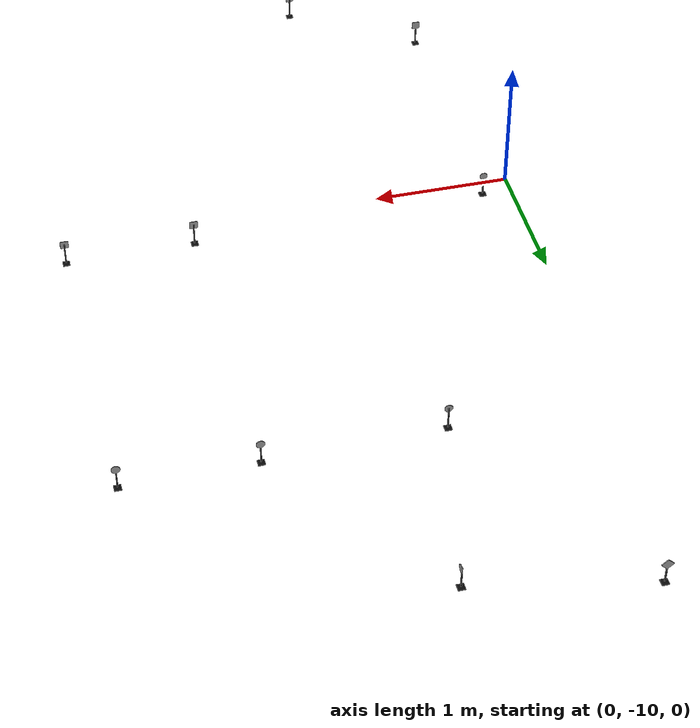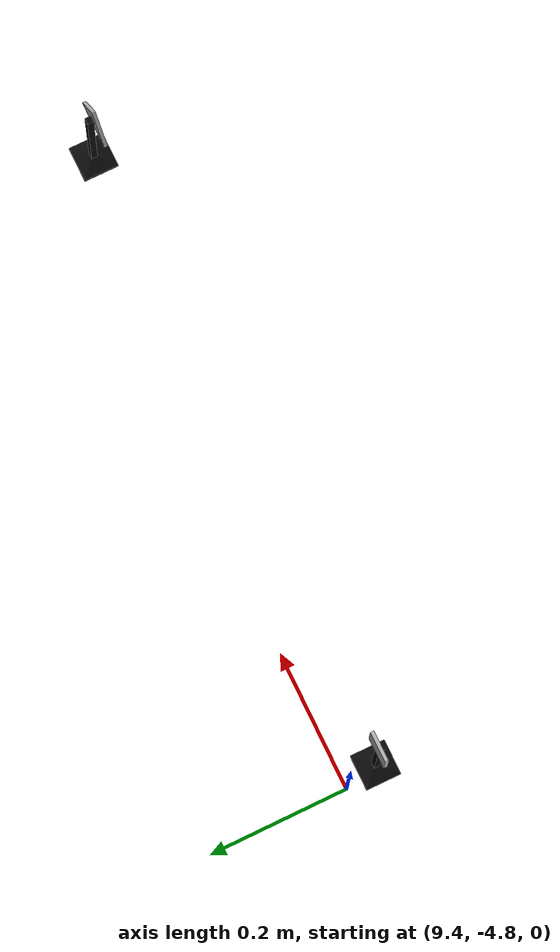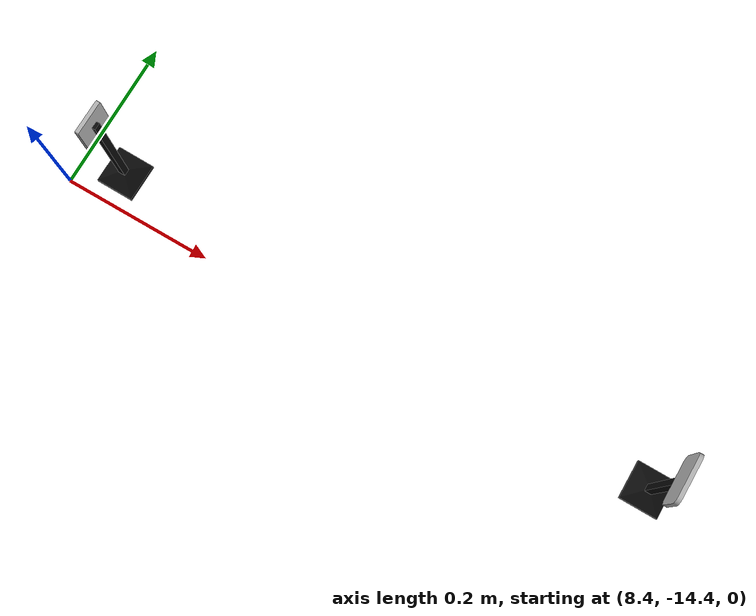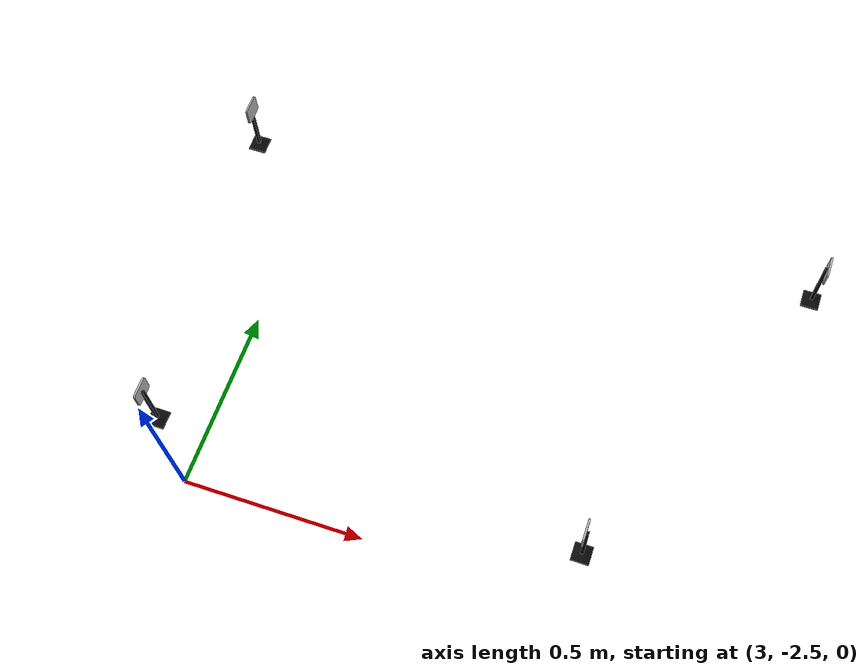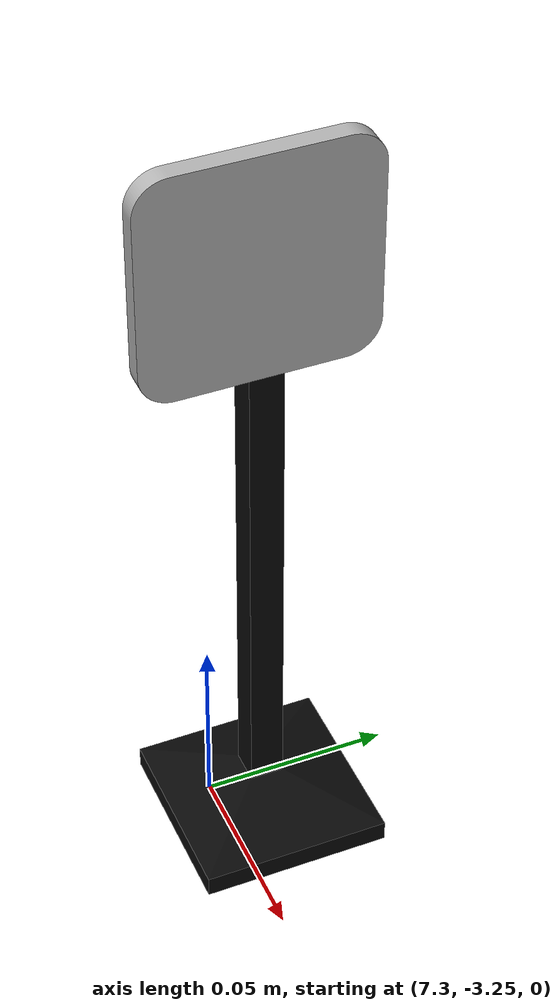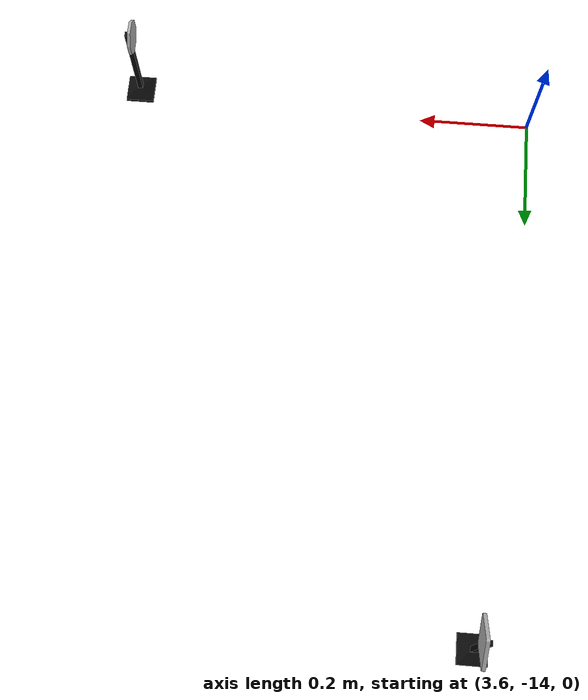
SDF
<sdf version="1.6">
 <world name="bfmc_official">
  <gravity>0 0 -9.8</gravity>
  <light name="c1" type="point">
   <pose>0 0 2 0 0 0</pose>
   <diffuse>125 125 125 125</diffuse>
   <specular>50 50 50 50</specular>
   <attenuation><range>20</range><constant>0.3</constant></attenuation>
   <cast_shadows>0</cast_shadows>
  </light>
  <light name="c2" type="point">
   <pose>15 0 2 0 0 0</pose>
   <diffuse>125 125 125 125</diffuse>
   <specular>50 50 50 50</specular>
   <attenuation><range>20</range><constant>0.3</constant></attenuation>
   <cast_shadows>0</cast_shadows>
  </light>
  <light name="c3" type="point">
   <pose>0 -15 2 0 0 0</pose>
   <diffuse>125 125 125 125</diffuse>
   <specular>50 50 50 50</specular>
   <attenuation><range>20</range><constant>0.3</constant></attenuation>
   <cast_shadows>0</cast_shadows>
  </light>
  <light name="c4" type="point">
   <pose>15 -15 2 0 0 0</pose>
   <diffuse>125 125 125 125</diffuse>
   <specular>50 50 50 50</specular>
   <attenuation><range>50</range><constant>0.3</constant></attenuation>
   <cast_shadows>0</cast_shadows>
  </light>
  <include>
   <uri>model://enter_highway_sign</uri>
   <name>EHIGH_T</name>
   <pose>5.871 -13.970 0.079 0 0 3.141592</pose>
  </include>
  <include>
   <uri>model://enter_highway_sign</uri>
   <name>EHIGH_Y</name>
   <pose>9.412 -4.850 0.079 0 0 1.570796</pose>
  </include>
  <include>
   <uri>model://leave_highway_sign</uri>
   <name>LHIGH_U</name>
   <pose>10.686 -6.276 0.079 0 0 4.712388</pose>
  </include>
  <include>
   <uri>model://leave_highway_sign</uri>
   <name>LHIGH_Z</name>
   <pose>6.520 -12.700 0.079 0 0 0</pose>
  </include>
  <include>
   <uri>model://leave_highway_sign</uri>
   <name>LHIGH_H</name>
   <pose>8.458 -14.359 0.079 0 0 -3.15</pose>
  </include>
  <include>
   <uri>model://prohibited_sign</uri>
   <name>DENY_V</name>
   <pose>3.323 -7.581 0.079 0 0 4.712388</pose>
  </include>
  <include>
   <uri>model://prohibited_sign</uri>
   <name>DENY_X</name>
   <pose>2.387 -7.581 0.079 0 0 4.712388</pose>
  </include>
  <include>
   <uri>model://prohibited_sign</uri>
   <name>DENY_G</name>
   <pose>11.578 -4.504 0.079 0 0 4.712388</pose>
  </include>
  <include>
   <uri>model://oneway_sign</uri>
   <name>ONEWAY_J</name>
   <pose>3.341 -9.821 0.079 0 0 1.570796</pose>
  </include>
  <include>
   <uri>model://oneway_sign</uri>
   <name>ONEWAY_B</name>
   <pose>2.406 -9.821 0.079 0 0 1.570796</pose>
  </include>
  <include><uri>model://oneway_sign</uri><name>ONEWAY_E</name><pose>9.196 -14.375 0.079 0 0 0</pose></include>
  <include><uri>model://parking_sign</uri><name>PRK_P1</name><pose>4.047 -2.358 0.079 0 0 0</pose></include>
  <include><uri>model://parking_sign</uri><name>PRK_P2</name><pose>2.857 -2.358 0.079 0 0 0</pose></include>
  <include>
   <uri>model://parking_sign</uri>
   <name>PRK_P3</name>
   <pose>2.779 -1.452 0.079 0 0 3.141592</pose>
  </include>
  <include>
   <uri>model://parking_sign</uri>
   <name>PRK_P4</name>
   <pose>4.459 -1.452 0.079 0 0 3.141592</pose>
  </include>
  <include>
   <uri>model://crosswalk_sign</uri>
   <name>CWALK_K</name>
   <pose>7.312 -3.240 0.079 0 0 3.141592</pose>
  </include>
  <include><uri>model://crosswalk_sign</uri><name>CWALK_L</name><pose>6.627 -4.181 0.079 0 0 0</pose></include>
  <include>
   <uri>model://crosswalk_sign</uri>
   <name>CWALK_M</name>
   <pose>6.777 -1.456 0.079 0 0 3.141592</pose>
  </include>
  <include><uri>model://crosswalk_sign</uri><name>CWALK_N</name><pose>6.130 -2.342 0.079 0 0 0</pose></include>
  <include>
   <uri>model://crosswalk_sign</uri>
   <name>CWALK_O</name>
   <pose>1.109 -12.486 0.079 0 0 1.570796</pose>
  </include>
  <include>
   <uri>model://crosswalk_sign</uri>
   <name>CWALK_P</name>
   <pose>0.195 -11.869 0.079 0 0 4.712388</pose>
  </include>
  <include>
   <uri>model://priority_sign</uri>
   <name>PRIOR_D</name>
   <pose>3.675 -13.050 0.079 0 0 3.141592</pose>
  </include>
  <include>
   <uri>model://priority_sign</uri>
   <name>PRIOR_F</name>
   <pose>0.204 -6.031 0.079 0 0 4.712388</pose>
  </include>
  <include>
   <uri>model://priority_sign</uri>
   <name>PRIOR_H</name>
   <pose>5.544 -11.381 0.079 0 0 1.570796</pose>
  </include>
  <include>
   <uri>model://priority_sign</uri>
   <name>PRIOR_I</name>
   <pose>4.589 -5.997 0.079 0 0 4.712388</pose>
  </include>
  <include><uri>model://roundabout_sign</uri><name>GIR_Q</name><pose>8.766 -4.179 0.079 0 0 0</pose></include>
  <include>
   <uri>model://roundabout_sign</uri>
   <name>GIR_R</name>
   <pose>10.320 -4.869 0.079 0 0 1.570796</pose>
  </include>
  <include>
   <uri>model://roundabout_sign</uri>
   <name>GIR_S</name>
   <pose>11.015 -3.297 0.079 0 0 3.141592</pose>
  </include>
  <include><uri>model://stop_sign</uri><name>STOP_A</name><pose>2.103 -14.004 0.079 0 0 0</pose></include>
  <include>
   <uri>model://stop_sign</uri>
   <name>STOP_C</name>
   <pose>4.272 -11.153 0.079 0 0 3.141592</pose>
  </include>
  <include><uri>model://stop_sign</uri><name>STOP_E</name><pose>0.217 -9.870 0.079 0 0 4.712388</pose></include>
  <include><uri>model://stop_sign</uri><name>STOP_G</name><pose>1.129 -7.602 0.079 0 0 1.570796</pose></include>
  <include>
   <uri>model://stop_sign</uri>
   <name>STOP_W</name>
   <pose>12.603 -4.515 0.079 0 0 1.570796</pose>
  </include>
  <include><uri>model://stop_sign</uri><name>STOP_H</name><pose>4.327 -14.023 0.079 0 0 0</pose></include>
  <include><uri>model://stop_sign</uri><name>STOP_F</name><pose>4.298 -7.342 0.079 0 0 0</pose></include>
  <include><uri>model://stop_sign</uri><name>STOP_I</name><pose>1.423 -6.287 0.079 0 0 3.141592</pose></include>
 </world>
</sdf>

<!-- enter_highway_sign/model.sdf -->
<sdf version='1.6'>
  <model name='enter_highway_sign'>
    <static>1</static>
    <link name='sign_leg'>
      <inertial>
        <mass>0.5</mass>
        <inertia>
          <ixx>0.166667</ixx>
          <ixy>0</ixy>
          <ixz>0</ixz>
          <iyy>0.166667</iyy>
          <iyz>0</iyz>
          <izz>0.166667</izz>
        </inertia>
	<pose>0 0 -0.078998 0.0 0.0 0.0 </pose>
        <pose frame=''>0 0 0 0 -0 0</pose>
      </inertial>
      <pose frame=''>0.002193 -0.000682 -0.07606 0 -0 0</pose>
      <gravity>1</gravity>
      <self_collide>1</self_collide>
      <kinematic>0</kinematic>
      <enable_wind>1</enable_wind>
      <visual name='visual'>
        <pose frame=''>0 0 0 0 -0 0</pose>
        <geometry>
          <mesh>
            <uri>model://subassembly/meshes/sign_leg.dae</uri>
            <scale>1 1 1</scale>
          </mesh>
        </geometry>
        <transparency>0</transparency>
        <cast_shadows>1</cast_shadows>
      </visual>
      <collision name='collision'>
        <laser_retro>0</laser_retro>
        <max_contacts>10</max_contacts>
        <pose frame=''>0 0 0 0 -0 0</pose>
        <geometry>
          <mesh>
            <uri>model://subassembly/meshes/sign_leg.dae</uri>
            <scale>1 1 1</scale>
          </mesh>
        </geometry>
        <surface>
          <friction>
            <ode>
              <mu>0.46</mu>
              <mu2>1</mu2>
              <fdir1>0 0 0</fdir1>
              <slip1>0</slip1>
              <slip2>0</slip2>
            </ode>
            <torsional>
              <coefficient>1</coefficient>
              <patch_radius>0</patch_radius>
              <surface_radius>0</surface_radius>
              <use_patch_radius>1</use_patch_radius>
              <ode>
                <slip>0</slip>
              </ode>
            </torsional>
          </friction>
          <bounce>
            <restitution_coefficient>0</restitution_coefficient>
            <threshold>1e+06</threshold>
          </bounce>
          <contact>
            <collide_without_contact>0</collide_without_contact>
            <collide_without_contact_bitmask>1</collide_without_contact_bitmask>
            <collide_bitmask>1</collide_bitmask>
            <ode>
              <soft_cfm>0</soft_cfm>
              <soft_erp>0.2</soft_erp>
              <kp>1e+13</kp>
              <kd>1</kd>
              <max_vel>0.01</max_vel>
              <min_depth>0</min_depth>
            </ode>
            <bullet>
              <split_impulse>1</split_impulse>
              <split_impulse_penetration_threshold>-0.01</split_impulse_penetration_threshold>
              <soft_cfm>0</soft_cfm>
              <soft_erp>0.2</soft_erp>
              <kp>1e+13</kp>
              <kd>1</kd>
            </bullet>
          </contact>
        </surface>
      </collision>
    </link>
    <link name='rectangular_support'>
      <inertial>
        <mass>0.022</mass>
        <inertia>
          <ixx>0.166667</ixx>
          <ixy>0</ixy>
          <ixz>0</ixz>
          <iyy>0.166667</iyy>
          <iyz>0</iyz>
          <izz>0.166667</izz>
        </inertia>
        <pose frame=''>0 0 0 0 -0 0</pose>
      </inertial>
      <pose frame=''>0.002 0 0.09894 0 0 3.141592</pose>
      <gravity>1</gravity>
      <self_collide>1</self_collide>
      <kinematic>0</kinematic>
      <enable_wind>1</enable_wind>
      <visual name='visual'>
        <pose frame=''>0 0 0 0 -0 0</pose>
        <geometry>
          <mesh>
            <uri>model://enter_highway_sign/meshes/enter_highway_sign.dae</uri>
            <scale>1 1 1</scale>
          </mesh>
        </geometry>
        <material>
          <lighting>1</lighting>
          <script>
            <uri>model://enter_highway_sign/materials/scripts</uri>
            <uri>model://enter_highway_sign/materials/textures</uri>
            <name>ENTER_HIGHWAY_SIGN</name>
          </script>
          <shader type='vertex'>
            <normal_map>__default__</normal_map>
          </shader>
          <ambient>0.3 0.3 0.3 1</ambient>
          <diffuse>0.7 0.7 0.7 1</diffuse>
          <specular>0.01 0.01 0.01 1</specular>
          <emissive>1 1 1 1</emissive>
        </material>
        <transparency>0</transparency>
        <cast_shadows>1</cast_shadows>
      </visual>
      <collision name='collision'>
        <laser_retro>0</laser_retro>
        <max_contacts>10</max_contacts>
        <pose frame=''>0 0 0 0 -0 0</pose>
        <geometry>
          <mesh>
            <uri>model://enter_highway_sign/meshes/enter_highway_sign.dae</uri>
            <scale>1 1 1</scale>
          </mesh>
        </geometry>
        <surface>
          <friction>
            <ode>
              <mu>0.46</mu>
              <mu2>1</mu2>
              <fdir1>0 0 0</fdir1>
              <slip1>0</slip1>
              <slip2>0</slip2>
            </ode>
            <torsional>
              <coefficient>1</coefficient>
              <patch_radius>0</patch_radius>
              <surface_radius>0</surface_radius>
              <use_patch_radius>1</use_patch_radius>
              <ode>
                <slip>0</slip>
              </ode>
            </torsional>
          </friction>
          <bounce>
            <restitution_coefficient>0</restitution_coefficient>
            <threshold>1e+06</threshold>
          </bounce>
          <contact>
            <collide_without_contact>0</collide_without_contact>
            <collide_without_contact_bitmask>1</collide_without_contact_bitmask>
            <collide_bitmask>1</collide_bitmask>
            <ode>
              <soft_cfm>0</soft_cfm>
              <soft_erp>0.2</soft_erp>
              <kp>1e+13</kp>
              <kd>1</kd>
              <max_vel>0.01</max_vel>
              <min_depth>0</min_depth>
            </ode>
            <bullet>
              <split_impulse>1</split_impulse>
              <split_impulse_penetration_threshold>-0.01</split_impulse_penetration_threshold>
              <soft_cfm>0</soft_cfm>
              <soft_erp>0.2</soft_erp>
              <kp>1e+13</kp>
              <kd>1</kd>
            </bullet>
          </contact>
        </surface>
      </collision>
    </link>
    <static>1</static>
    <allow_auto_disable>1</allow_auto_disable>
  </model>
</sdf>

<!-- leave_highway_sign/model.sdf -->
<sdf version='1.6'>
  <model name='leave_highway_sign'>
    <static>1</static>
    <link name='sign_leg'>
      <inertial>
        <mass>0.5</mass>
        <inertia>
          <ixx>0.166667</ixx>
          <ixy>0</ixy>
          <ixz>0</ixz>
          <iyy>0.166667</iyy>
          <iyz>0</iyz>
          <izz>0.166667</izz>
        </inertia>
	<pose>0 0 -0.078998 0.0 0.0 0.0 </pose>
        <pose frame=''>0 0 0 0 -0 0</pose>
      </inertial>
      <pose frame=''>0.002193 -0.000682 -0.07606 0 -0 0</pose>
      <gravity>1</gravity>
      <self_collide>1</self_collide>
      <kinematic>0</kinematic>
      <enable_wind>1</enable_wind>
      <visual name='visual'>
        <pose frame=''>0 0 0 0 -0 0</pose>
        <geometry>
          <mesh>
            <uri>model://subassembly/meshes/sign_leg.dae</uri>
            <scale>1 1 1</scale>
          </mesh>
        </geometry>
        <transparency>0</transparency>
        <cast_shadows>1</cast_shadows>
      </visual>
      <collision name='collision'>
        <laser_retro>0</laser_retro>
        <max_contacts>10</max_contacts>
        <pose frame=''>0 0 0 0 -0 0</pose>
        <geometry>
          <mesh>
            <uri>model://subassembly/meshes/sign_leg.dae</uri>
            <scale>1 1 1</scale>
          </mesh>
        </geometry>
        <surface>
          <friction>
            <ode>
              <mu>0.46</mu>
              <mu2>1</mu2>
              <fdir1>0 0 0</fdir1>
              <slip1>0</slip1>
              <slip2>0</slip2>
            </ode>
            <torsional>
              <coefficient>1</coefficient>
              <patch_radius>0</patch_radius>
              <surface_radius>0</surface_radius>
              <use_patch_radius>1</use_patch_radius>
              <ode>
                <slip>0</slip>
              </ode>
            </torsional>
          </friction>
          <bounce>
            <restitution_coefficient>0</restitution_coefficient>
            <threshold>1e+06</threshold>
          </bounce>
          <contact>
            <collide_without_contact>0</collide_without_contact>
            <collide_without_contact_bitmask>1</collide_without_contact_bitmask>
            <collide_bitmask>1</collide_bitmask>
            <ode>
              <soft_cfm>0</soft_cfm>
              <soft_erp>0.2</soft_erp>
              <kp>1e+13</kp>
              <kd>1</kd>
              <max_vel>0.01</max_vel>
              <min_depth>0</min_depth>
            </ode>
            <bullet>
              <split_impulse>1</split_impulse>
              <split_impulse_penetration_threshold>-0.01</split_impulse_penetration_threshold>
              <soft_cfm>0</soft_cfm>
              <soft_erp>0.2</soft_erp>
              <kp>1e+13</kp>
              <kd>1</kd>
            </bullet>
          </contact>
        </surface>
      </collision>
    </link>
    <link name='rectangular_support'>
      <inertial>
        <mass>0.022</mass>
        <inertia>
          <ixx>0.166667</ixx>
          <ixy>0</ixy>
          <ixz>0</ixz>
          <iyy>0.166667</iyy>
          <iyz>0</iyz>
          <izz>0.166667</izz>
        </inertia>
        <pose frame=''>0 0 0 0 -0 0</pose>
      </inertial>
      <pose frame=''>-0.0 0.0 0.09894 0 0 3.141592</pose>
      <gravity>1</gravity>
      <self_collide>1</self_collide>
      <kinematic>0</kinematic>
      <enable_wind>1</enable_wind>
      <visual name='visual'>
        <pose frame=''>-0.002 0 0 0 -0 0</pose>
        <geometry>
          <mesh>
            <uri>model://leave_highway_sign/meshes/leave_highway_sign.dae</uri>
            <scale>1 1 1</scale>
          </mesh>
        </geometry>
        <material>
          <lighting>1</lighting>
          <script>
            <uri>model://leave_highway_sign/materials/scripts</uri>
            <uri>model://leave_highway_sign/materials/textures</uri>
            <name>LEAVE_HIGHWAY_SIGN</name>
          </script>
          <shader type='vertex'>
            <normal_map>__default__</normal_map>
          </shader>
          <ambient>0.3 0.3 0.3 1</ambient>
          <diffuse>0.7 0.7 0.7 1</diffuse>
          <specular>0.01 0.01 0.01 1</specular>
          <emissive>1 1 1 1</emissive>
        </material>
        <transparency>0</transparency>
        <cast_shadows>1</cast_shadows>
      </visual>
      <collision name='collision'>
        <laser_retro>0</laser_retro>
        <max_contacts>10</max_contacts>
        <pose frame=''>-0.002 0 0 0 -0 0</pose>
        <geometry>
          <mesh>
            <uri>model://leave_highway_sign/meshes/leave_highway_sign.dae</uri>
            <scale>1 1 1</scale>
          </mesh>
        </geometry>
        <surface>
          <friction>
            <ode>
              <mu>0.46</mu>
              <mu2>1</mu2>
              <fdir1>0 0 0</fdir1>
              <slip1>0</slip1>
              <slip2>0</slip2>
            </ode>
            <torsional>
              <coefficient>1</coefficient>
              <patch_radius>0</patch_radius>
              <surface_radius>0</surface_radius>
              <use_patch_radius>1</use_patch_radius>
              <ode>
                <slip>0</slip>
              </ode>
            </torsional>
          </friction>
          <bounce>
            <restitution_coefficient>0</restitution_coefficient>
            <threshold>1e+06</threshold>
          </bounce>
          <contact>
            <collide_without_contact>0</collide_without_contact>
            <collide_without_contact_bitmask>1</collide_without_contact_bitmask>
            <collide_bitmask>1</collide_bitmask>
            <ode>
              <soft_cfm>0</soft_cfm>
              <soft_erp>0.2</soft_erp>
              <kp>1e+13</kp>
              <kd>1</kd>
              <max_vel>0.01</max_vel>
              <min_depth>0</min_depth>
            </ode>
            <bullet>
              <split_impulse>1</split_impulse>
              <split_impulse_penetration_threshold>-0.01</split_impulse_penetration_threshold>
              <soft_cfm>0</soft_cfm>
              <soft_erp>0.2</soft_erp>
              <kp>1e+13</kp>
              <kd>1</kd>
            </bullet>
          </contact>
        </surface>
      </collision>
    </link>
    <static>1</static>
    <allow_auto_disable>1</allow_auto_disable>
  </model>
</sdf>

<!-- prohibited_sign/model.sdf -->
<sdf version='1.6'>
  <model name='prohibited_sign'>
    <static>1</static>
    <link name='sign_leg'>
      <inertial>
        <mass>0.5</mass>
        <inertia>
          <ixx>0.166667</ixx>
          <ixy>0</ixy>
          <ixz>0</ixz>
          <iyy>0.166667</iyy>
          <iyz>0</iyz>
          <izz>0.166667</izz>
        </inertia>
	<pose>0 0 -0.078998 0.0 0.0 0.0 </pose>
        <pose frame=''>0 0 0 0 -0 0</pose>
      </inertial>
      <pose frame=''>0.002193 -0.000682 -0.07606 0 -0 0</pose>
      <gravity>1</gravity>
      <self_collide>1</self_collide>
      <kinematic>0</kinematic>
      <enable_wind>1</enable_wind>
      <visual name='visual'>
        <pose frame=''>0 0 0 0 -0 0</pose>
        <geometry>
          <mesh>
            <uri>model://subassembly/meshes/sign_leg.dae</uri>
            <scale>1 1 1</scale>
          </mesh>
        </geometry>
        <transparency>0</transparency>
        <cast_shadows>1</cast_shadows>
      </visual>
      <collision name='collision'>
        <laser_retro>0</laser_retro>
        <max_contacts>10</max_contacts>
        <pose frame=''>0 0 0 0 -0 0</pose>
        <geometry>
          <mesh>
            <uri>model://subassembly/meshes/sign_leg.dae</uri>
            <scale>1 1 1</scale>
          </mesh>
        </geometry>
        <surface>
          <friction>
            <ode>
              <mu>0.46</mu>
              <mu2>1</mu2>
              <fdir1>0 0 0</fdir1>
              <slip1>0</slip1>
              <slip2>0</slip2>
            </ode>
            <torsional>
              <coefficient>1</coefficient>
              <patch_radius>0</patch_radius>
              <surface_radius>0</surface_radius>
              <use_patch_radius>1</use_patch_radius>
              <ode>
                <slip>0</slip>
              </ode>
            </torsional>
          </friction>
          <bounce>
            <restitution_coefficient>0</restitution_coefficient>
            <threshold>1e+06</threshold>
          </bounce>
          <contact>
            <collide_without_contact>0</collide_without_contact>
            <collide_without_contact_bitmask>1</collide_without_contact_bitmask>
            <collide_bitmask>1</collide_bitmask>
            <ode>
              <soft_cfm>0</soft_cfm>
              <soft_erp>0.2</soft_erp>
              <kp>1e+13</kp>
              <kd>1</kd>
              <max_vel>0.01</max_vel>
              <min_depth>0</min_depth>
            </ode>
            <bullet>
              <split_impulse>1</split_impulse>
              <split_impulse_penetration_threshold>-0.01</split_impulse_penetration_threshold>
              <soft_cfm>0</soft_cfm>
              <soft_erp>0.2</soft_erp>
              <kp>1e+13</kp>
              <kd>1</kd>
            </bullet>
          </contact>
        </surface>
      </collision>
    </link>
    <link name='rectangular_support'>
      <inertial>
        <mass>0.022</mass>
        <inertia>
          <ixx>0.166667</ixx>
          <ixy>0</ixy>
          <ixz>0</ixz>
          <iyy>0.166667</iyy>
          <iyz>0</iyz>
          <izz>0.166667</izz>
        </inertia>
        <pose frame=''>0 0 0 0 -0 0</pose>
      </inertial>
      <pose frame=''>-0.0 0.0 0.09894 0 0 3.141592</pose>
      <gravity>1</gravity>
      <self_collide>1</self_collide>
      <kinematic>0</kinematic>
      <enable_wind>1</enable_wind>
      <visual name='visual'>
        <pose frame=''>0 0 0 0 -0 0</pose>
        <geometry>
          <mesh>
            <uri>model://prohibited_sign/meshes/notallowed_sign.dae</uri>
            <scale>1 1 1</scale>
          </mesh>
        </geometry>
        <material>
          <lighting>1</lighting>
          <script>
            <uri>model://prohibited_sign/materials/scripts</uri>
            <uri>model://prohibited_sign/materials/textures</uri>
            <name>NOTALLOWED_SIGN</name>
          </script>
          <shader type='vertex'>
            <normal_map>__default__</normal_map>
          </shader>
          <ambient>0.3 0.3 0.3 1</ambient>
          <diffuse>0.7 0.7 0.7 1</diffuse>
          <specular>0.01 0.01 0.01 1</specular>
          <emissive>1 1 1 1</emissive>
        </material>
        <transparency>0</transparency>
        <cast_shadows>1</cast_shadows>
      </visual>
      <collision name='collision'>
        <laser_retro>0</laser_retro>
        <max_contacts>10</max_contacts>
        <pose frame=''>0 0 0 0 -0 0</pose>
        <geometry>
          <mesh>
            <uri>model://prohibited_sign/meshes/notallowed_sign.dae</uri>
            <scale>1 1 1</scale>
          </mesh>
        </geometry>
        <surface>
          <friction>
            <ode>
              <mu>0.46</mu>
              <mu2>1</mu2>
              <fdir1>0 0 0</fdir1>
              <slip1>0</slip1>
              <slip2>0</slip2>
            </ode>
            <torsional>
              <coefficient>1</coefficient>
              <patch_radius>0</patch_radius>
              <surface_radius>0</surface_radius>
              <use_patch_radius>1</use_patch_radius>
              <ode>
                <slip>0</slip>
              </ode>
            </torsional>
          </friction>
          <bounce>
            <restitution_coefficient>0</restitution_coefficient>
            <threshold>1e+06</threshold>
          </bounce>
          <contact>
            <collide_without_contact>0</collide_without_contact>
            <collide_without_contact_bitmask>1</collide_without_contact_bitmask>
            <collide_bitmask>1</collide_bitmask>
            <ode>
              <soft_cfm>0</soft_cfm>
              <soft_erp>0.2</soft_erp>
              <kp>1e+13</kp>
              <kd>1</kd>
              <max_vel>0.01</max_vel>
              <min_depth>0</min_depth>
            </ode>
            <bullet>
              <split_impulse>1</split_impulse>
              <split_impulse_penetration_threshold>-0.01</split_impulse_penetration_threshold>
              <soft_cfm>0</soft_cfm>
              <soft_erp>0.2</soft_erp>
              <kp>1e+13</kp>
              <kd>1</kd>
            </bullet>
          </contact>
        </surface>
      </collision>
    </link>
    <static>1</static>
    <allow_auto_disable>1</allow_auto_disable>
  </model>
</sdf>

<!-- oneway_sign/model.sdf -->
<sdf version='1.6'>
  <model name='parking_sign'>
    <static>1</static>
    <link name='sign_leg'>
      <inertial>
        <mass>0.5</mass>
        <inertia>
          <ixx>0.166667</ixx>
          <ixy>0</ixy>
          <ixz>0</ixz>
          <iyy>0.166667</iyy>
          <iyz>0</iyz>
          <izz>0.166667</izz>
        </inertia>
	<pose>0 0 -0.078998 0.0 0.0 0.0 </pose>
        <pose frame=''>0 0 0 0 -0 0</pose>
      </inertial>
      <pose frame=''>0.002193 -0.000682 -0.07606 0 -0 0</pose>
      <gravity>1</gravity>
      <self_collide>1</self_collide>
      <kinematic>0</kinematic>
      <enable_wind>1</enable_wind>
      <visual name='visual'>
        <pose frame=''>0 0 0 0 -0 0</pose>
        <geometry>
          <mesh>
            <uri>model://subassembly/meshes/sign_leg.dae</uri>
            <scale>1 1 1</scale>
          </mesh>
        </geometry>
        <transparency>0</transparency>
        <cast_shadows>1</cast_shadows>
      </visual>
      <collision name='collision'>
        <laser_retro>0</laser_retro>
        <max_contacts>10</max_contacts>
        <pose frame=''>0 0 0 0 -0 0</pose>
        <geometry>
          <mesh>
            <uri>model://subassembly/meshes/sign_leg.dae</uri>
            <scale>1 1 1</scale>
          </mesh>
        </geometry>
        <surface>
          <friction>
            <ode>
              <mu>0.46</mu>
              <mu2>1</mu2>
              <fdir1>0 0 0</fdir1>
              <slip1>0</slip1>
              <slip2>0</slip2>
            </ode>
            <torsional>
              <coefficient>1</coefficient>
              <patch_radius>0</patch_radius>
              <surface_radius>0</surface_radius>
              <use_patch_radius>1</use_patch_radius>
              <ode>
                <slip>0</slip>
              </ode>
            </torsional>
          </friction>
          <bounce>
            <restitution_coefficient>0</restitution_coefficient>
            <threshold>1e+06</threshold>
          </bounce>
          <contact>
            <collide_without_contact>0</collide_without_contact>
            <collide_without_contact_bitmask>1</collide_without_contact_bitmask>
            <collide_bitmask>1</collide_bitmask>
            <ode>
              <soft_cfm>0</soft_cfm>
              <soft_erp>0.2</soft_erp>
              <kp>1e+13</kp>
              <kd>1</kd>
              <max_vel>0.01</max_vel>
              <min_depth>0</min_depth>
            </ode>
            <bullet>
              <split_impulse>1</split_impulse>
              <split_impulse_penetration_threshold>-0.01</split_impulse_penetration_threshold>
              <soft_cfm>0</soft_cfm>
              <soft_erp>0.2</soft_erp>
              <kp>1e+13</kp>
              <kd>1</kd>
            </bullet>
          </contact>
        </surface>
      </collision>
    </link>
    <link name='rectangular_support'>
      <inertial>
        <mass>0.022</mass>
        <inertia>
          <ixx>0.166667</ixx>
          <ixy>0</ixy>
          <ixz>0</ixz>
          <iyy>0.166667</iyy>
          <iyz>0</iyz>
          <izz>0.166667</izz>
        </inertia>
        <pose frame=''>0 0 0 0 -0 0</pose>
      </inertial>
      <pose frame=''>-0.0 0.0 0.09894 0 0 3.141592</pose>
      <gravity>1</gravity>
      <self_collide>1</self_collide>
      <kinematic>0</kinematic>
      <enable_wind>1</enable_wind>
      <visual name='visual'>
        <pose frame=''>0 0 0 0 -0 0</pose>
        <geometry>
          <mesh>
            <uri>model://oneway_sign/meshes/oneway_sign.dae</uri>
            <scale>10 10 10</scale>
          </mesh>
        </geometry>
        <material>
          <lighting>1</lighting>
          <script>
            <uri>model://oneway_sign/materials/scripts</uri>
            <uri>model://oneway_sign/materials/textures</uri>
            <name>ONEWAY_SIGN</name>
          </script>
          <shader type='vertex'>
            <normal_map>__default__</normal_map>
          </shader>
          <ambient>0.3 0.3 0.3 1</ambient>
          <diffuse>0.7 0.7 0.7 1</diffuse>
          <specular>0.01 0.01 0.01 1</specular>
          <emissive>1 1 1 1</emissive>
        </material>
        <transparency>0</transparency>
        <cast_shadows>1</cast_shadows>
      </visual>
      <collision name='collision'>
        <laser_retro>0</laser_retro>
        <max_contacts>10</max_contacts>
        <pose frame=''>0 0 0 0 -0 0</pose>
        <geometry>
          <mesh>
            <uri>model://oneway_sign/meshes/oneway_sign.dae</uri>
            <scale>10 10 10</scale>
          </mesh>
        </geometry>
        <surface>
          <friction>
            <ode>
              <mu>0.46</mu>
              <mu2>1</mu2>
              <fdir1>0 0 0</fdir1>
              <slip1>0</slip1>
              <slip2>0</slip2>
            </ode>
            <torsional>
              <coefficient>1</coefficient>
              <patch_radius>0</patch_radius>
              <surface_radius>0</surface_radius>
              <use_patch_radius>1</use_patch_radius>
              <ode>
                <slip>0</slip>
              </ode>
            </torsional>
          </friction>
          <bounce>
            <restitution_coefficient>0</restitution_coefficient>
            <threshold>1e+06</threshold>
          </bounce>
          <contact>
            <collide_without_contact>0</collide_without_contact>
            <collide_without_contact_bitmask>1</collide_without_contact_bitmask>
            <collide_bitmask>1</collide_bitmask>
            <ode>
              <soft_cfm>0</soft_cfm>
              <soft_erp>0.2</soft_erp>
              <kp>1e+13</kp>
              <kd>1</kd>
              <max_vel>0.01</max_vel>
              <min_depth>0</min_depth>
            </ode>
            <bullet>
              <split_impulse>1</split_impulse>
              <split_impulse_penetration_threshold>-0.01</split_impulse_penetration_threshold>
              <soft_cfm>0</soft_cfm>
              <soft_erp>0.2</soft_erp>
              <kp>1e+13</kp>
              <kd>1</kd>
            </bullet>
          </contact>
        </surface>
      </collision>
    </link>
    <static>1</static>
    <allow_auto_disable>1</allow_auto_disable>
  </model>
</sdf>

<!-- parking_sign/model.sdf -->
<sdf version='1.6'>
  <model name='parking_sign'>
    <static>1</static>
    <link name='sign_leg'>
      <inertial>
        <mass>0.5</mass>
        <inertia>
          <ixx>0.166667</ixx>
          <ixy>0</ixy>
          <ixz>0</ixz>
          <iyy>0.166667</iyy>
          <iyz>0</iyz>
          <izz>0.166667</izz>
        </inertia>
	<pose>0 0 -0.078998 0.0 0.0 0.0 </pose>
        <pose frame=''>0 0 0 0 -0 0</pose>
      </inertial>
      <pose frame=''>0.002193 -0.000682 -0.07606 0 -0 0</pose>
      <gravity>1</gravity>
      <self_collide>1</self_collide>
      <kinematic>0</kinematic>
      <enable_wind>1</enable_wind>
      <visual name='visual'>
        <pose frame=''>0 0 0 0 -0 0</pose>
        <geometry>
          <mesh>
            <uri>model://subassembly/meshes/sign_leg.dae</uri>
            <scale>1 1 1</scale>
          </mesh>
        </geometry>
        <transparency>0</transparency>
        <cast_shadows>1</cast_shadows>
      </visual>
      <collision name='collision'>
        <laser_retro>0</laser_retro>
        <max_contacts>10</max_contacts>
        <pose frame=''>0 0 0 0 -0 0</pose>
        <geometry>
          <mesh>
            <uri>model://subassembly/meshes/sign_leg.dae</uri>
            <scale>1 1 1</scale>
          </mesh>
        </geometry>
        <surface>
          <friction>
            <ode>
              <mu>0.46</mu>
              <mu2>1</mu2>
              <fdir1>0 0 0</fdir1>
              <slip1>0</slip1>
              <slip2>0</slip2>
            </ode>
            <torsional>
              <coefficient>1</coefficient>
              <patch_radius>0</patch_radius>
              <surface_radius>0</surface_radius>
              <use_patch_radius>1</use_patch_radius>
              <ode>
                <slip>0</slip>
              </ode>
            </torsional>
          </friction>
          <bounce>
            <restitution_coefficient>0</restitution_coefficient>
            <threshold>1e+06</threshold>
          </bounce>
          <contact>
            <collide_without_contact>0</collide_without_contact>
            <collide_without_contact_bitmask>1</collide_without_contact_bitmask>
            <collide_bitmask>1</collide_bitmask>
            <ode>
              <soft_cfm>0</soft_cfm>
              <soft_erp>0.2</soft_erp>
              <kp>1e+13</kp>
              <kd>1</kd>
              <max_vel>0.01</max_vel>
              <min_depth>0</min_depth>
            </ode>
            <bullet>
              <split_impulse>1</split_impulse>
              <split_impulse_penetration_threshold>-0.01</split_impulse_penetration_threshold>
              <soft_cfm>0</soft_cfm>
              <soft_erp>0.2</soft_erp>
              <kp>1e+13</kp>
              <kd>1</kd>
            </bullet>
          </contact>
        </surface>
      </collision>
    </link>
    <link name='rectangular_support'>
      <inertial>
        <mass>0.022</mass>
        <inertia>
          <ixx>0.166667</ixx>
          <ixy>0</ixy>
          <ixz>0</ixz>
          <iyy>0.166667</iyy>
          <iyz>0</iyz>
          <izz>0.166667</izz>
        </inertia>
        <pose frame=''>0 0 0 0 -0 0</pose>
      </inertial>
      <pose frame=''>-0.002193 0.000682 0.09894 0 0 3.141592</pose>
      <gravity>1</gravity>
      <self_collide>1</self_collide>
      <kinematic>0</kinematic>
      <enable_wind>1</enable_wind>
      <visual name='visual'>
        <pose frame=''>0 0 0 0 -0 0</pose>
        <geometry>
          <mesh>
            <uri>model://parking_sign/meshes/parking_sign.dae</uri>
            <scale>10 10 10</scale>
          </mesh>
        </geometry>
        <material>
          <lighting>1</lighting>
          <script>
            <uri>model://parking_sign/materials/scripts</uri>
            <uri>model://parking_sign/materials/textures</uri>
            <name>PARKING_SIGN</name>
          </script>
          <shader type='vertex'>
            <normal_map>__default__</normal_map>
          </shader>
          <ambient>0.3 0.3 0.3 1</ambient>
          <diffuse>0.7 0.7 0.7 1</diffuse>
          <specular>0.01 0.01 0.01 1</specular>
          <emissive>1 1 1 1</emissive>
        </material>
        <transparency>0</transparency>
        <cast_shadows>1</cast_shadows>
      </visual>
      <collision name='collision'>
        <laser_retro>0</laser_retro>
        <max_contacts>10</max_contacts>
        <pose frame=''>0 0 0 0 -0 0</pose>
        <geometry>
          <mesh>
            <uri>model://parking_sign/meshes/parking_sign.dae</uri>
            <scale>10 10 10</scale>
          </mesh>
        </geometry>
        <surface>
          <friction>
            <ode>
              <mu>0.46</mu>
              <mu2>1</mu2>
              <fdir1>0 0 0</fdir1>
              <slip1>0</slip1>
              <slip2>0</slip2>
            </ode>
            <torsional>
              <coefficient>1</coefficient>
              <patch_radius>0</patch_radius>
              <surface_radius>0</surface_radius>
              <use_patch_radius>1</use_patch_radius>
              <ode>
                <slip>0</slip>
              </ode>
            </torsional>
          </friction>
          <bounce>
            <restitution_coefficient>0</restitution_coefficient>
            <threshold>1e+06</threshold>
          </bounce>
          <contact>
            <collide_without_contact>0</collide_without_contact>
            <collide_without_contact_bitmask>1</collide_without_contact_bitmask>
            <collide_bitmask>1</collide_bitmask>
            <ode>
              <soft_cfm>0</soft_cfm>
              <soft_erp>0.2</soft_erp>
              <kp>1e+13</kp>
              <kd>1</kd>
              <max_vel>0.01</max_vel>
              <min_depth>0</min_depth>
            </ode>
            <bullet>
              <split_impulse>1</split_impulse>
              <split_impulse_penetration_threshold>-0.01</split_impulse_penetration_threshold>
              <soft_cfm>0</soft_cfm>
              <soft_erp>0.2</soft_erp>
              <kp>1e+13</kp>
              <kd>1</kd>
            </bullet>
          </contact>
        </surface>
      </collision>
    </link>
    <static>1</static>
    <allow_auto_disable>1</allow_auto_disable>
  </model>
</sdf>

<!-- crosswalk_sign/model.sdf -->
<sdf version='1.6'>
  <model name='crosswalk_sign'>
    <static>1</static>
    <link name='sign_leg'>
      <inertial>
        <mass>0.5</mass>
        <inertia>
          <ixx>0.166667</ixx>
          <ixy>0</ixy>
          <ixz>0</ixz>
          <iyy>0.166667</iyy>
          <iyz>0</iyz>
          <izz>0.166667</izz>
        </inertia>
	<pose>0 0 -0.078998 0.0 0.0 0.0 </pose>
        <pose frame=''>0 0 0 0 -0 0</pose>
      </inertial>
      <pose frame=''>0.002193 -0.000682 -0.07606 0 -0 0</pose>
      <gravity>1</gravity>
      <self_collide>1</self_collide>
      <kinematic>0</kinematic>
      <enable_wind>1</enable_wind>
      <visual name='visual'>
        <pose frame=''>0 0 0 0 -0 0</pose>
        <geometry>
          <mesh>
            <uri>model://subassembly/meshes/sign_leg.dae</uri>
            <scale>1 1 1</scale>
          </mesh>
        </geometry>
        <transparency>0</transparency>
        <cast_shadows>1</cast_shadows>
      </visual>
      <collision name='collision'>
        <laser_retro>0</laser_retro>
        <max_contacts>10</max_contacts>
        <pose frame=''>0 0 0 0 -0 0</pose>
        <geometry>
          <mesh>
            <uri>model://subassembly/meshes/sign_leg.dae</uri>
            <scale>1 1 1</scale>
          </mesh>
        </geometry>
        <surface>
          <friction>
            <ode>
              <mu>0.46</mu>
              <mu2>1</mu2>
              <fdir1>0 0 0</fdir1>
              <slip1>0</slip1>
              <slip2>0</slip2>
            </ode>
            <torsional>
              <coefficient>1</coefficient>
              <patch_radius>0</patch_radius>
              <surface_radius>0</surface_radius>
              <use_patch_radius>1</use_patch_radius>
              <ode>
                <slip>0</slip>
              </ode>
            </torsional>
          </friction>
          <bounce>
            <restitution_coefficient>0</restitution_coefficient>
            <threshold>1e+06</threshold>
          </bounce>
          <contact>
            <collide_without_contact>0</collide_without_contact>
            <collide_without_contact_bitmask>1</collide_without_contact_bitmask>
            <collide_bitmask>1</collide_bitmask>
            <ode>
              <soft_cfm>0</soft_cfm>
              <soft_erp>0.2</soft_erp>
              <kp>1e+13</kp>
              <kd>1</kd>
              <max_vel>0.01</max_vel>
              <min_depth>0</min_depth>
            </ode>
            <bullet>
              <split_impulse>1</split_impulse>
              <split_impulse_penetration_threshold>-0.01</split_impulse_penetration_threshold>
              <soft_cfm>0</soft_cfm>
              <soft_erp>0.2</soft_erp>
              <kp>1e+13</kp>
              <kd>1</kd>
            </bullet>
          </contact>
        </surface>
      </collision>
    </link>
    <link name='rectangular_support'>
      <inertial>
        <mass>0.022</mass>
        <inertia>
          <ixx>0.166667</ixx>
          <ixy>0</ixy>
          <ixz>0</ixz>
          <iyy>0.166667</iyy>
          <iyz>0</iyz>
          <izz>0.166667</izz>
        </inertia>
        <pose frame=''>0 0 0 0 -0 0</pose>
      </inertial>
      <pose frame=''>-0.0 0.000682 0.09894 0 0 3.141592</pose>
      <gravity>1</gravity>
      <self_collide>1</self_collide>
      <kinematic>0</kinematic>
      <enable_wind>1</enable_wind>
      <visual name='visual'>
        <pose frame=''>0 0 0 0 -0 0</pose>
        <geometry>
          <mesh>
            <uri>model://crosswalk_sign/meshes/pedestrian_sign.dae</uri>
            <scale>10 10 10</scale>
          </mesh>
        </geometry>
        <material>
          <lighting>1</lighting>
          <script>
            <uri>model://crosswalk_sign/materials/scripts</uri>
            <uri>model://crosswalk_sign/materials/textures</uri>
            <name>PEDESTRIAN_SIGN</name>
          </script>
          <shader type='vertex'>
            <normal_map>__default__</normal_map>
          </shader>
          <ambient>0.3 0.3 0.3 1</ambient>
          <diffuse>0.7 0.7 0.7 1</diffuse>
          <specular>0.01 0.01 0.01 1</specular>
          <emissive>1 1 1 1</emissive>
        </material>
        <transparency>0</transparency>
        <cast_shadows>1</cast_shadows>
      </visual>
      <collision name='collision'>
        <laser_retro>0</laser_retro>
        <max_contacts>10</max_contacts>
        <pose frame=''>0 0 0 0 -0 0</pose>
        <geometry>
          <mesh>
            <uri>model://crosswalk_sign/meshes/pedestrian_sign.dae</uri>
            <scale>10 10 10</scale>
          </mesh>
        </geometry>
        <surface>
          <friction>
            <ode>
              <mu>0.46</mu>
              <mu2>1</mu2>
              <fdir1>0 0 0</fdir1>
              <slip1>0</slip1>
              <slip2>0</slip2>
            </ode>
            <torsional>
              <coefficient>1</coefficient>
              <patch_radius>0</patch_radius>
              <surface_radius>0</surface_radius>
              <use_patch_radius>1</use_patch_radius>
              <ode>
                <slip>0</slip>
              </ode>
            </torsional>
          </friction>
          <bounce>
            <restitution_coefficient>0</restitution_coefficient>
            <threshold>1e+06</threshold>
          </bounce>
          <contact>
            <collide_without_contact>0</collide_without_contact>
            <collide_without_contact_bitmask>1</collide_without_contact_bitmask>
            <collide_bitmask>1</collide_bitmask>
            <ode>
              <soft_cfm>0</soft_cfm>
              <soft_erp>0.2</soft_erp>
              <kp>1e+13</kp>
              <kd>1</kd>
              <max_vel>0.01</max_vel>
              <min_depth>0</min_depth>
            </ode>
            <bullet>
              <split_impulse>1</split_impulse>
              <split_impulse_penetration_threshold>-0.01</split_impulse_penetration_threshold>
              <soft_cfm>0</soft_cfm>
              <soft_erp>0.2</soft_erp>
              <kp>1e+13</kp>
              <kd>1</kd>
            </bullet>
          </contact>
        </surface>
      </collision>
    </link>
    <static>1</static>
    <allow_auto_disable>1</allow_auto_disable>
  </model>
</sdf>

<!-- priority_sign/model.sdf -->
<sdf version='1.6'>
  <model name='priority_sign'>
    <static>1</static>
    <link name='sign_leg'>
      <inertial>
        <mass>0.5</mass>
        <inertia>
          <ixx>0.166667</ixx>
          <ixy>0</ixy>
          <ixz>0</ixz>
          <iyy>0.166667</iyy>
          <iyz>0</iyz>
          <izz>0.166667</izz>
        </inertia>
	<pose>0 0 -0.078998 0.0 0.0 0.0 </pose>
        <pose frame=''>0 0 0 0 -0 0</pose>
      </inertial>
      <pose frame=''>0.002193 -0.000682 -0.07606 0 -0 0</pose>
      <gravity>1</gravity>
      <self_collide>1</self_collide>
      <kinematic>0</kinematic>
      <enable_wind>1</enable_wind>
      <visual name='visual'>
        <pose frame=''>0 0 0 0 -0 0</pose>
        <geometry>
          <mesh>
            <uri>model://subassembly/meshes/sign_leg.dae</uri>
            <scale>1 1 1</scale>
          </mesh>
        </geometry>
        <transparency>0</transparency>
        <cast_shadows>1</cast_shadows>
      </visual>
      <collision name='collision'>
        <laser_retro>0</laser_retro>
        <max_contacts>10</max_contacts>
        <pose frame=''>0 0 0 0 -0 0</pose>
        <geometry>
          <mesh>
            <uri>model://subassembly/meshes/sign_leg.dae</uri>
            <scale>1 1 1</scale>
          </mesh>
        </geometry>
        <surface>
          <friction>
            <ode>
              <mu>0.46</mu>
              <mu2>1</mu2>
              <fdir1>0 0 0</fdir1>
              <slip1>0</slip1>
              <slip2>0</slip2>
            </ode>
            <torsional>
              <coefficient>1</coefficient>
              <patch_radius>0</patch_radius>
              <surface_radius>0</surface_radius>
              <use_patch_radius>1</use_patch_radius>
              <ode>
                <slip>0</slip>
              </ode>
            </torsional>
          </friction>
          <bounce>
            <restitution_coefficient>0</restitution_coefficient>
            <threshold>1e+06</threshold>
          </bounce>
          <contact>
            <collide_without_contact>0</collide_without_contact>
            <collide_without_contact_bitmask>1</collide_without_contact_bitmask>
            <collide_bitmask>1</collide_bitmask>
            <ode>
              <soft_cfm>0</soft_cfm>
              <soft_erp>0.2</soft_erp>
              <kp>1e+13</kp>
              <kd>1</kd>
              <max_vel>0.01</max_vel>
              <min_depth>0</min_depth>
            </ode>
            <bullet>
              <split_impulse>1</split_impulse>
              <split_impulse_penetration_threshold>-0.01</split_impulse_penetration_threshold>
              <soft_cfm>0</soft_cfm>
              <soft_erp>0.2</soft_erp>
              <kp>1e+13</kp>
              <kd>1</kd>
            </bullet>
          </contact>
        </surface>
      </collision>
    </link>
    <link name='caro_support'>
      <inertial>
        <mass>0.022</mass>
        <inertia>
          <ixx>0.166667</ixx>
          <ixy>0</ixy>
          <ixz>0</ixz>
          <iyy>0.166667</iyy>
          <iyz>0</iyz>
          <izz>0.166667</izz>
        </inertia>
        <pose frame=''>0 0 0 0 -0 0</pose>
      </inertial>
      <pose frame=''>-0.002193 0.000682 0.09894 0 0 3.141592</pose>
      <gravity>1</gravity>
      <self_collide>1</self_collide>
      <kinematic>0</kinematic>
      <enable_wind>1</enable_wind>
      <visual name='visual'>
        <pose frame=''>0 0 0 0 -0 0</pose>
        <geometry>
          <mesh>
            <uri>model://priority_sign/meshes/priority_sign.dae</uri>
            <scale>1 1 1</scale>
          </mesh>
        </geometry>
        <material>
          <lighting>1</lighting>
          <script>
            <uri>model://priority_sign/materials/scripts</uri>
            <uri>model://priority_sign/materials/textures</uri>
            <name>PRIORITY_SIGN</name>
          </script>
          <shader type='vertex'>
            <normal_map>__default__</normal_map>
          </shader>
          <ambient>0.3 0.3 0.3 1</ambient>
          <diffuse>0.7 0.7 0.7 1</diffuse>
          <specular>0.01 0.01 0.01 1</specular>
          <emissive>1 1 1 1</emissive>
        </material>
        <transparency>0</transparency>
        <cast_shadows>1</cast_shadows>
      </visual>
      <collision name='collision'>
        <laser_retro>0</laser_retro>
        <max_contacts>10</max_contacts>
        <pose frame=''>0 0 0 0 -0 0</pose>
        <geometry>
          <mesh>
            <uri>model://priority_sign/meshes/priority_sign.dae</uri>
            <scale>1 1 1</scale>
          </mesh>
        </geometry>
        <surface>
          <friction>
            <ode>
              <mu>0.46</mu>
              <mu2>1</mu2>
              <fdir1>0 0 0</fdir1>
              <slip1>0</slip1>
              <slip2>0</slip2>
            </ode>
            <torsional>
              <coefficient>1</coefficient>
              <patch_radius>0</patch_radius>
              <surface_radius>0</surface_radius>
              <use_patch_radius>1</use_patch_radius>
              <ode>
                <slip>0</slip>
              </ode>
            </torsional>
          </friction>
          <bounce>
            <restitution_coefficient>0</restitution_coefficient>
            <threshold>1e+06</threshold>
          </bounce>
          <contact>
            <collide_without_contact>0</collide_without_contact>
            <collide_without_contact_bitmask>1</collide_without_contact_bitmask>
            <collide_bitmask>1</collide_bitmask>
            <ode>
              <soft_cfm>0</soft_cfm>
              <soft_erp>0.2</soft_erp>
              <kp>1e+13</kp>
              <kd>1</kd>
              <max_vel>0.01</max_vel>
              <min_depth>0</min_depth>
            </ode>
            <bullet>
              <split_impulse>1</split_impulse>
              <split_impulse_penetration_threshold>-0.01</split_impulse_penetration_threshold>
              <soft_cfm>0</soft_cfm>
              <soft_erp>0.2</soft_erp>
              <kp>1e+13</kp>
              <kd>1</kd>
            </bullet>
          </contact>
        </surface>
      </collision>
    </link>
    <static>1</static>
    <allow_auto_disable>1</allow_auto_disable>
  </model>
</sdf>

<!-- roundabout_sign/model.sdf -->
<sdf version='1.6'>
  <model name='roundabout_sign'>
    <static>1</static>
    <link name='sign_leg'>
      <inertial>
        <mass>0.5</mass>
        <inertia>
          <ixx>0.166667</ixx>
          <ixy>0</ixy>
          <ixz>0</ixz>
          <iyy>0.166667</iyy>
          <iyz>0</iyz>
          <izz>0.166667</izz>
        </inertia>
	<pose>0 0 -0.078998 0.0 0.0 0.0 </pose>
        <pose frame=''>0 0 0 0 -0 0</pose>
      </inertial>
      <pose frame=''>0.002193 -0.000682 -0.07606 0 -0 0</pose>
      <gravity>1</gravity>
      <self_collide>1</self_collide>
      <kinematic>0</kinematic>
      <enable_wind>1</enable_wind>
      <visual name='visual'>
        <pose frame=''>0 0 0 0 -0 0</pose>
        <geometry>
          <mesh>
            <uri>model://subassembly/meshes/sign_leg.dae</uri>
            <scale>1 1 1</scale>
          </mesh>
        </geometry>
        <transparency>0</transparency>
        <cast_shadows>1</cast_shadows>
      </visual>
      <collision name='collision'>
        <laser_retro>0</laser_retro>
        <max_contacts>10</max_contacts>
        <pose frame=''>0 0 0 0 -0 0</pose>
        <geometry>
          <mesh>
            <uri>model://subassembly/meshes/sign_leg.dae</uri>
            <scale>1 1 1</scale>
          </mesh>
        </geometry>
        <surface>
          <friction>
            <ode>
              <mu>0.46</mu>
              <mu2>1</mu2>
              <fdir1>0 0 0</fdir1>
              <slip1>0</slip1>
              <slip2>0</slip2>
            </ode>
            <torsional>
              <coefficient>1</coefficient>
              <patch_radius>0</patch_radius>
              <surface_radius>0</surface_radius>
              <use_patch_radius>1</use_patch_radius>
              <ode>
                <slip>0</slip>
              </ode>
            </torsional>
          </friction>
          <bounce>
            <restitution_coefficient>0</restitution_coefficient>
            <threshold>1e+06</threshold>
          </bounce>
          <contact>
            <collide_without_contact>0</collide_without_contact>
            <collide_without_contact_bitmask>1</collide_without_contact_bitmask>
            <collide_bitmask>1</collide_bitmask>
            <ode>
              <soft_cfm>0</soft_cfm>
              <soft_erp>0.2</soft_erp>
              <kp>1e+13</kp>
              <kd>1</kd>
              <max_vel>0.01</max_vel>
              <min_depth>0</min_depth>
            </ode>
            <bullet>
              <split_impulse>1</split_impulse>
              <split_impulse_penetration_threshold>-0.01</split_impulse_penetration_threshold>
              <soft_cfm>0</soft_cfm>
              <soft_erp>0.2</soft_erp>
              <kp>1e+13</kp>
              <kd>1</kd>
            </bullet>
          </contact>
        </surface>
      </collision>
    </link>
    <link name='triangular_support'>
      <inertial>
        <mass>0.022</mass>
        <inertia>
          <ixx>0.166667</ixx>
          <ixy>0</ixy>
          <ixz>0</ixz>
          <iyy>0.166667</iyy>
          <iyz>0</iyz>
          <izz>0.166667</izz>
        </inertia>
        <pose frame=''>0 0 0 0 -0 0</pose>
      </inertial>
      <pose frame=''>-0.002193 0.000682 0.09894 0 0 3.141592</pose>
      <gravity>1</gravity>
      <self_collide>1</self_collide>
      <kinematic>0</kinematic>
      <enable_wind>1</enable_wind>
      <visual name='visual'>
        <pose frame=''>0 0 0 0 -0 0</pose>
        <geometry>
          <mesh>
            <uri>model://roundabout_sign/meshes/roundabout_sign.dae</uri>
            <scale>1 1 1</scale>
          </mesh>
        </geometry>
        <material>
          <lighting>1</lighting>
          <script>
            <uri>model://roundabout_sign/materials/scripts</uri>
            <uri>model://roundabout_sign/materials/textures</uri>
            <name>ROUNDABOUT_SIGN</name>
          </script>
          <shader type='vertex'>
            <normal_map>__default__</normal_map>
          </shader>
          <ambient>0.3 0.3 0.3 1</ambient>
          <diffuse>0.7 0.7 0.7 1</diffuse>
          <specular>0.01 0.01 0.01 1</specular>
          <emissive>1 1 1 1</emissive>
        </material>
        <transparency>0</transparency>
        <cast_shadows>1</cast_shadows>
      </visual>
      <collision name='collision'>
        <laser_retro>0</laser_retro>
        <max_contacts>10</max_contacts>
        <pose frame=''>0 0 0 0 -0 0</pose>
        <geometry>
          <mesh>
            <uri>model://roundabout_sign/meshes/roundabout_sign.dae</uri>
            <scale>1 1 1</scale>
          </mesh>
        </geometry>
        <surface>
          <friction>
            <ode>
              <mu>0.46</mu>
              <mu2>1</mu2>
              <fdir1>0 0 0</fdir1>
              <slip1>0</slip1>
              <slip2>0</slip2>
            </ode>
            <torsional>
              <coefficient>1</coefficient>
              <patch_radius>0</patch_radius>
              <surface_radius>0</surface_radius>
              <use_patch_radius>1</use_patch_radius>
              <ode>
                <slip>0</slip>
              </ode>
            </torsional>
          </friction>
          <bounce>
            <restitution_coefficient>0</restitution_coefficient>
            <threshold>1e+06</threshold>
          </bounce>
          <contact>
            <collide_without_contact>0</collide_without_contact>
            <collide_without_contact_bitmask>1</collide_without_contact_bitmask>
            <collide_bitmask>1</collide_bitmask>
            <ode>
              <soft_cfm>0</soft_cfm>
              <soft_erp>0.2</soft_erp>
              <kp>1e+13</kp>
              <kd>1</kd>
              <max_vel>0.01</max_vel>
              <min_depth>0</min_depth>
            </ode>
            <bullet>
              <split_impulse>1</split_impulse>
              <split_impulse_penetration_threshold>-0.01</split_impulse_penetration_threshold>
              <soft_cfm>0</soft_cfm>
              <soft_erp>0.2</soft_erp>
              <kp>1e+13</kp>
              <kd>1</kd>
            </bullet>
          </contact>
        </surface>
      </collision>
    </link>
    <static>1</static>
    <allow_auto_disable>1</allow_auto_disable>

  </model>
</sdf>

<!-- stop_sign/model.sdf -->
<sdf version='1.6'>
  <model name='stop_sign'>
    <static>1</static>
    <link name='sign_leg'>
      <inertial>
        <mass>0.5</mass>
        <inertia>
          <ixx>0.166667</ixx>
          <ixy>0</ixy>
          <ixz>0</ixz>
          <iyy>0.166667</iyy>
          <iyz>0</iyz>
          <izz>0.166667</izz>
        </inertia>
	<pose>0 0 -0.078998 0.0 0.0 0.0 </pose>
        <pose frame=''>0 0 0 0 -0 0</pose>
      </inertial>
      <pose frame=''>0.002193 -0.000682 -0.07606 0 -0 0</pose>
      <gravity>1</gravity>
      <self_collide>1</self_collide>
      <kinematic>0</kinematic>
      <enable_wind>1</enable_wind>
      <visual name='visual'>
        <pose frame=''>0 0 0 0 -0 0</pose>
        <geometry>
          <mesh>
            <uri>model://subassembly/meshes/sign_leg.dae</uri>
            <scale>1 1 1</scale>
          </mesh>
        </geometry>
        <transparency>0</transparency>
        <cast_shadows>1</cast_shadows>
      </visual>
      <collision name='collision'>
        <laser_retro>0</laser_retro>
        <max_contacts>10</max_contacts>
        <pose frame=''>0 0 0 0 -0 0</pose>
        <geometry>
          <mesh>
            <uri>model://subassembly/meshes/sign_leg.dae</uri>
            <scale>1 1 1</scale>
          </mesh>
        </geometry>
        <surface>
          <friction>
            <ode>
              <mu>0.46</mu>
              <mu2>1</mu2>
              <fdir1>0 0 0</fdir1>
              <slip1>0</slip1>
              <slip2>0</slip2>
            </ode>
            <torsional>
              <coefficient>1</coefficient>
              <patch_radius>0</patch_radius>
              <surface_radius>0</surface_radius>
              <use_patch_radius>1</use_patch_radius>
              <ode>
                <slip>0</slip>
              </ode>
            </torsional>
          </friction>
          <bounce>
            <restitution_coefficient>0</restitution_coefficient>
            <threshold>1e+06</threshold>
          </bounce>
          <contact>
            <collide_without_contact>0</collide_without_contact>
            <collide_without_contact_bitmask>1</collide_without_contact_bitmask>
            <collide_bitmask>1</collide_bitmask>
            <ode>
              <soft_cfm>0</soft_cfm>
              <soft_erp>0.2</soft_erp>
              <kp>1e+13</kp>
              <kd>1</kd>
              <max_vel>0.01</max_vel>
              <min_depth>0</min_depth>
            </ode>
            <bullet>
              <split_impulse>1</split_impulse>
              <split_impulse_penetration_threshold>-0.01</split_impulse_penetration_threshold>
              <soft_cfm>0</soft_cfm>
              <soft_erp>0.2</soft_erp>
              <kp>1e+13</kp>
              <kd>1</kd>
            </bullet>
          </contact>
        </surface>
      </collision>
    </link>
    <link name='octagonal_support'>
      <inertial>
        <mass>0.022</mass>
        <inertia>
          <ixx>0.166667</ixx>
          <ixy>0</ixy>
          <ixz>0</ixz>
          <iyy>0.166667</iyy>
          <iyz>0</iyz>
          <izz>0.166667</izz>
        </inertia>
        <pose frame=''>0 0 0 0 -0 0</pose>
      </inertial>
      <pose frame=''>-0.002193 0.000682 0.09894 0 0 3.141592</pose>
      <gravity>1</gravity>
      <self_collide>1</self_collide>
      <kinematic>0</kinematic>
      <enable_wind>1</enable_wind>
      <visual name='visual'>
        <pose frame=''>0 0 0 0 -0 0</pose>
        <geometry>
          <mesh>
            <uri>model://stop_sign/meshes/stop_sign.dae</uri>
            <scale>1 1 1</scale>
          </mesh>
        </geometry>
        <material>
          <lighting>1</lighting>
          <script>
            <uri>model://stop_sign/materials/scripts</uri>
            <uri>model://stop_sign/materials/textures</uri>
            <name>STOP_SIGN</name>
          </script>
          <shader type='vertex'>
            <normal_map>__default__</normal_map>
          </shader>
          <ambient>0.3 0.3 0.3 1</ambient>
          <diffuse>0.7 0.7 0.7 1</diffuse>
          <specular>0.01 0.01 0.01 1</specular>
          <emissive>1 1 1 1</emissive>
        </material>
        <transparency>0</transparency>
        <cast_shadows>1</cast_shadows>
      </visual>
      <collision name='collision'>
        <laser_retro>0</laser_retro>
        <max_contacts>10</max_contacts>
        <pose frame=''>0 0 0 0 -0 0</pose>
        <geometry>
          <mesh>
            <uri>model://stop_sign/meshes/stop_sign.dae</uri>
            <scale>1 1 1</scale>
          </mesh>
        </geometry>
        <surface>
          <friction>
            <ode>
              <mu>0.46</mu>
              <mu2>1</mu2>
              <fdir1>0 0 0</fdir1>
              <slip1>0</slip1>
              <slip2>0</slip2>
            </ode>
            <torsional>
              <coefficient>1</coefficient>
              <patch_radius>0</patch_radius>
              <surface_radius>0</surface_radius>
              <use_patch_radius>1</use_patch_radius>
              <ode>
                <slip>0</slip>
              </ode>
            </torsional>
          </friction>
          <bounce>
            <restitution_coefficient>0</restitution_coefficient>
            <threshold>1e+06</threshold>
          </bounce>
          <contact>
            <collide_without_contact>0</collide_without_contact>
            <collide_without_contact_bitmask>1</collide_without_contact_bitmask>
            <collide_bitmask>1</collide_bitmask>
            <ode>
              <soft_cfm>0</soft_cfm>
              <soft_erp>0.2</soft_erp>
              <kp>1e+13</kp>
              <kd>1</kd>
              <max_vel>0.01</max_vel>
              <min_depth>0</min_depth>
            </ode>
            <bullet>
              <split_impulse>1</split_impulse>
              <split_impulse_penetration_threshold>-0.01</split_impulse_penetration_threshold>
              <soft_cfm>0</soft_cfm>
              <soft_erp>0.2</soft_erp>
              <kp>1e+13</kp>
              <kd>1</kd>
            </bullet>
          </contact>
        </surface>
      </collision>
    </link>
    <static>1</static>
    <allow_auto_disable>1</allow_auto_disable>

  </model>
</sdf>
